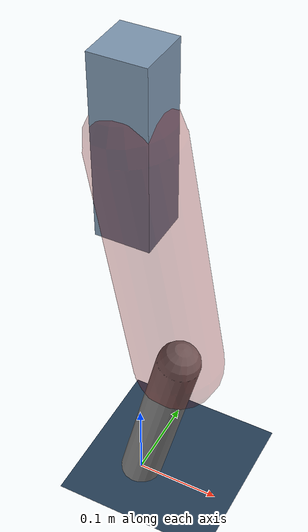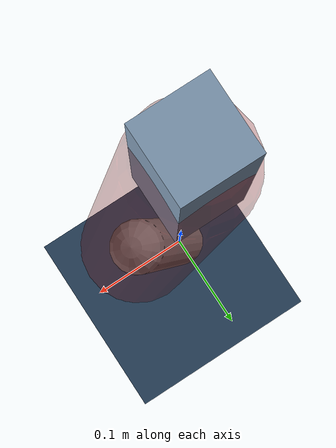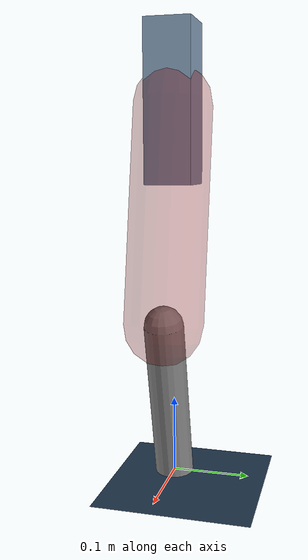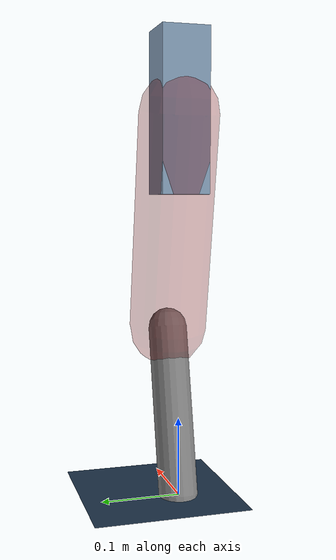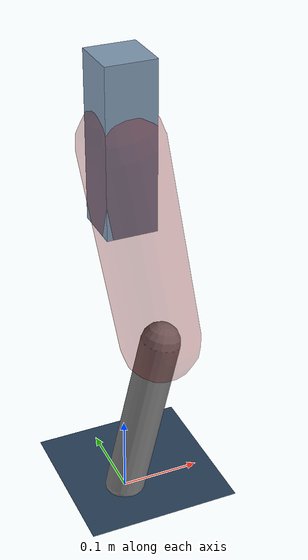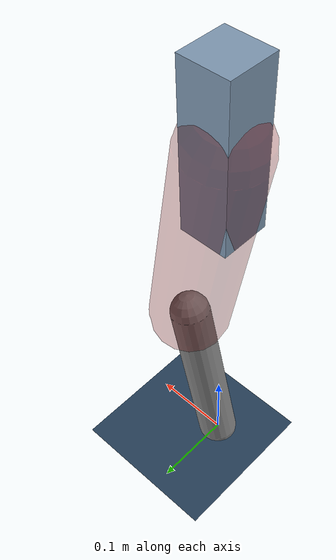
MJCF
<mujoco model="Hopper2D">
	<compiler inertiafromgeom="true" angle="radian" />
	<option timestep="0.001" integrator="implicit" cone="elliptic" solver="Newton" tolerance="1e-10" />

	<default>
		<geom contype="1" conaffinity="1" condim="3" friction="2 0.005 0.0001" solref="0.005 1" />
		<joint limited="true" damping="0.1" />
	</default>

	<asset>
		<texture name="skybox" type="skybox" builtin="gradient" rgb1=".4 .6 .8" rgb2="0 0 0" width="800" height="800" />
		<texture name="grid" type="2d" builtin="checker" rgb1=".1 .2 .3" rgb2=".2 .3 .4" width="300" height="300" mark="edge" markrgb=".2 .3 .4" />
		<material name="ground" texture="grid" texrepeat="1 1" texuniform="true" reflectance="0.1" />
		<material name="leg" rgba="0.5 0.6 0.7 1" />
	</asset>

	<worldbody>

		<geom name="floor" type="plane" size="5 5 0.25" material="ground" />

		<light directional="false" diffuse="0.8 0.8 0.8" specular="0.3 0.3 0.3" pos="0 0 2" dir="0 0 -1" />
		<light mode="targetbodycom" target="base" directional="false" diffuse="0.8 0.8 0.8" specular="0.3 0.3 0.3" pos="0 0 2" dir="0 0 -1" />

		<camera name="fixed" pos="0 -2 1" xyaxes="1 0 0 0 0 1" />
		<camera name="tracking" mode="trackcom" pos="0 -3 1" />

		<body name="root" pos="0 0 0.483686708844562">
			<joint name="slide_x" type="slide" axis="1 0 0" range="-100 100" />
			<joint name="slide_z" type="slide" axis="0 0 1" range="0 10" />

			<body name="base" pos="0 0 0">
				<geom name="torso" type="box" size="0.03 0.03 0.1" mass="2.125" material="leg" />

				<body name="link1" pos="0 0 0" euler="0 1.3931702762623106 0">
					<joint type="hinge" axis="0 -1 0" pos="0 0 0" name="hinge1" limited="true" range="-3.14 3.14" stiffness="0" damping="0.1" />
					<geom name="thigh" type="capsule" fromto="0 0 0 0.27749952709450754 0 0" size="0.05" rgba="0.5 0 0 0.3" mass="0.9284987704457195" />

					<body name="link2" pos="0.27749952709450754 0 0" euler="0 0.40642209027844395 0">
						<joint type="hinge" axis="0 -1 0" pos="0 0 0" name="hinge2" limited="true" range="-3.14 3.14" stiffness="0" damping="0.1" />
						<geom name="shank" type="capsule" fromto="0 0 0 0.21618718175005447 0 0" size="0.025" mass="0.414468463575049" />

					</body>
				</body>
			</body>
		</body>
	</worldbody>

	<actuator>
		<motor name="torque1" joint="hinge1" ctrlrange="-67.78303034258776 67.78303034258776" ctrllimited="true" gear="1" />
		<motor name="torque2" joint="hinge2" ctrlrange="-109.37674606257787 109.37674606257787" ctrllimited="true" gear="1" />
	</actuator>
</mujoco>
